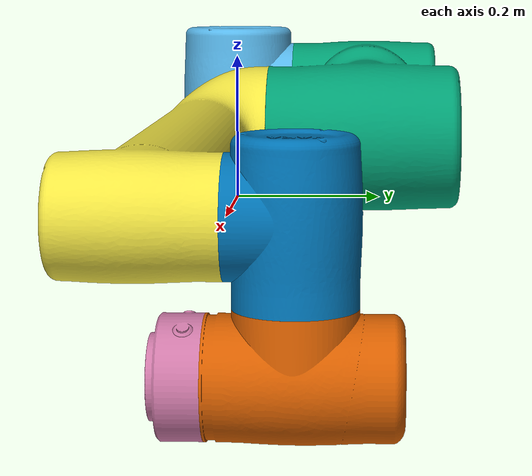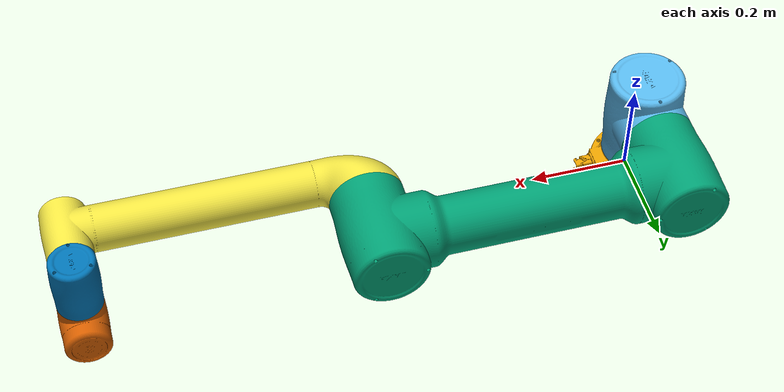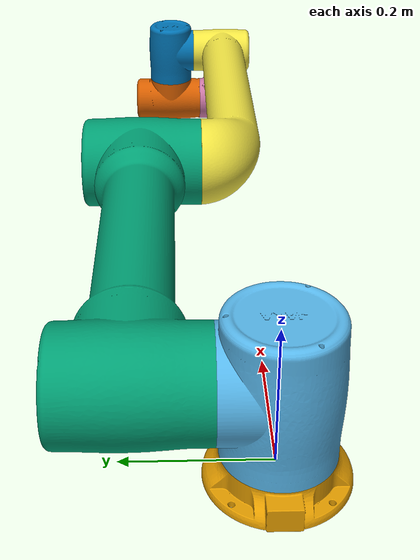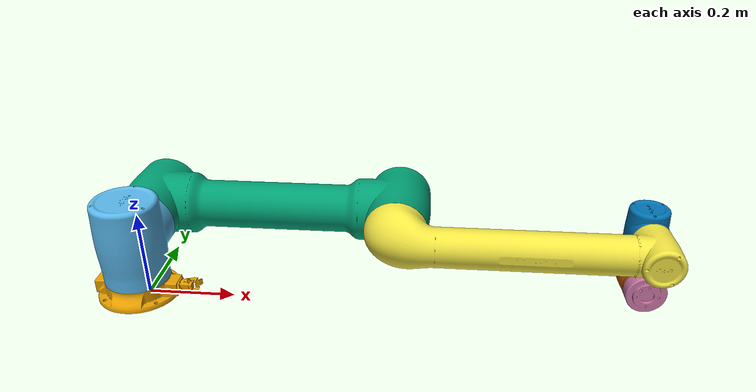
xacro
<?xml version="1.0" encoding="UTF-8"?>
<robot xmlns:xacro="http://www.ros.org/wiki/xacro" name="jaka_Zu12">
  <link name="base_link">
    <inertial>
      <mass value="1.3622333"/>
      <origin xyz="-0.02251092 0.00003924 0.02001856" rpy="0 0 0"/>
      <inertia ixx="0.00244265" ixy="-0.00000239" ixz="0.00000649" iyy="0.00318563" iyz="5.4e-7" izz="0.00530426"/>
    </inertial>
    <visual>
      <origin xyz="0 0 0" rpy="0 0 0"/>
      <geometry>
        <mesh filename="package://aubo_description/meshes/jaka_Zu12/base_link.stl"/>
      </geometry>
    </visual>
    <collision>
      <origin xyz="0 0 0" rpy="0 0 0"/>
      <geometry>
        <mesh filename="package://aubo_description/meshes/jaka_Zu12/base_link.stl"/>
      </geometry>
    </collision>
  </link>
  <link name="shoulder_Link">
    <inertial>
      <mass value="6.40335184"/>
      <origin xyz="-0.00398183 -5.9e-7 0.08437617" rpy="0 0 0"/>
      <inertia ixx="0.02903434" ixy="2.7e-7" ixz="0.00005977" iyy="0.02973271" iyz="-1.3e-7" izz="0.01996389"/>
    </inertial>
    <visual>
      <origin xyz="0 0 0" rpy="0 0 0"/>
      <geometry>
        <mesh filename="package://aubo_description/meshes/jaka_Zu12/Link_1.stl"/>
      </geometry>
    </visual>
    <collision>
      <origin xyz="0 0 0" rpy="0 0 0"/>
      <geometry>
        <mesh filename="package://aubo_description/meshes/jaka_Zu12/Link_1.stl"/>
      </geometry>
    </collision>
  </link>
  <link name="upperArm_Link">
    <inertial>
      <mass value="21.08242964"/>
      <origin xyz="0.29750016 -2e-8 -0.07397045" rpy="0 0 0"/>
      <inertia ixx="0.07343223" ixy="-0.00000274" ixz="-2e-8" iyy="1.32051487" iyz="-1e-8" izz="1.30093395"/>
    </inertial>
    <visual>
      <origin xyz="0 0 0" rpy="0 0 0"/>
      <geometry>
        <mesh filename="package://aubo_description/meshes/jaka_Zu12/Link_2.stl"/>
      </geometry>
    </visual>
    <collision>
      <origin xyz="0 0 0" rpy="0 0 0"/>
      <geometry>
        <mesh filename="package://aubo_description/meshes/jaka_Zu12/Link_2.stl"/>
      </geometry>
    </collision>
  </link>
  <link name="foreArm_Link">
    <inertial>
      <mass value="8.57316957"/>
      <origin xyz="0.00000143 0.27265689 0.05637991" rpy="0 0 0"/>
      <inertia ixx="0.37321758" ixy="0.0000025" ixz="1.4e-7" iyy="0.01219586" iyz="-0.01143538" izz="0.37257386"/>
    </inertial>
    <visual>
      <origin xyz="0 0 0" rpy="0 0 0"/>
      <geometry>
        <mesh filename="package://aubo_description/meshes/jaka_Zu12/Link_3.stl"/>
      </geometry>
    </visual>
    <collision>
      <origin xyz="0 0 0" rpy="0 0 0"/>
      <geometry>
        <mesh filename="package://aubo_description/meshes/jaka_Zu12/Link_3.stl"/>
      </geometry>
    </collision>
  </link>
  <link name="wrist1_Link">
    <inertial>
      <mass value="1.49619108"/>
      <origin xyz="-0.00339141 3.6e-7 0.04722957" rpy="0 0 0"/>
      <inertia ixx="0.0017809" ixy="1e-8" ixz="0.00001532" iyy="0.00264631" iyz="-1e-8" izz="0.00254652"/>
    </inertial>
    <visual>
      <origin xyz="0 0 0" rpy="0 0 0"/>
      <geometry>
        <mesh filename="package://aubo_description/meshes/jaka_Zu12/Link_4.stl"/>
      </geometry>
    </visual>
    <collision>
      <origin xyz="0 0 0" rpy="0 0 0"/>
      <geometry>
        <mesh filename="package://aubo_description/meshes/jaka_Zu12/Link_4.stl"/>
      </geometry>
    </collision>
  </link>
  <link name="wrist2_Link">
    <inertial>
      <mass value="1.70178613"/>
      <origin xyz="0.00534852 2.1e-7 0.04762457" rpy="0 0 0"/>
      <inertia ixx="0.00198515" ixy="2e-8" ixz="-0.00002749" iyy="0.00363181" iyz="0" izz="0.00353004"/>
    </inertial>
    <visual>
      <origin xyz="0 0 0" rpy="0 0 0"/>
      <geometry>
        <mesh filename="package://aubo_description/meshes/jaka_Zu12/Link_5.stl"/>
      </geometry>
    </visual>
    <collision>
      <origin xyz="0 0 0" rpy="0 0 0"/>
      <geometry>
        <mesh filename="package://aubo_description/meshes/jaka_Zu12/Link_5.stl"/>
      </geometry>
    </collision>
  </link>
  <link name="wrist3_Link">
    <inertial>
      <mass value="0.38083844"/>
      <origin xyz="0.00002142 0.00011793 0.01944363" rpy="0 0 0"/>
      <inertia ixx="0.0002314" ixy="-1.4e-7" ixz="-1.4e-7" iyy="0.00023168" iyz="4e-7" izz="0.00038316"/>
    </inertial>
    <visual>
      <origin xyz="0 0 0" rpy="0 0 0"/>
      <geometry>
        <mesh filename="package://aubo_description/meshes/jaka_Zu12/Link_6.stl"/>
      </geometry>
    </visual>
    <collision>
      <origin xyz="0 0 0" rpy="0 0 0"/>
      <geometry>
        <mesh filename="package://aubo_description/meshes/jaka_Zu12/Link_6.stl"/>
      </geometry>
    </collision>
  </link>
  <joint name="shoulder_joint" type="revolute">
    <parent link="base_link"/>
    <child link="shoulder_Link"/>
    <origin xyz="-0.0238 0 0.05495" rpy="0 0 -1.57079633"/>
    <axis xyz="0 0 1"/>
    <limit lower="-3.141592653589793" upper="3.141592653589793" effort="500" velocity="1"/>
  </joint>
  <joint name="upperArm_joint" type="revolute">
    <parent link="shoulder_Link"/>
    <child link="upperArm_Link"/>
    <origin xyz="-0.10565 0 0.0877" rpy="1.57079633 0 1.57079633"/>
    <axis xyz="0 0 1"/>
    <limit lower="-3.141592653589793" upper="3.141592653589793" effort="500" velocity="1"/>
  </joint>
  <joint name="foreArm_joint" type="revolute">
    <parent link="upperArm_Link"/>
    <child link="foreArm_Link"/>
    <origin xyz="0.595 0 0.02665" rpy="0 0 -1.57079633"/>
    <axis xyz="0 0 1"/>
    <limit lower="-3.141592653589793" upper="3.141592653589793" effort="500" velocity="1"/>
  </joint>
  <joint name="wrist1_joint" type="revolute">
    <parent link="foreArm_Link"/>
    <child link="wrist1_Link"/>
    <origin xyz="0 0.5715 -0.002" rpy="-3.14159265 0 3.14159265"/>
    <axis xyz="0 0 1"/>
    <limit lower="-3.141592653589793" upper="3.141592653589793" effort="500" velocity="1"/>
  </joint>
  <joint name="wrist2_joint" type="revolute">
    <parent link="wrist1_Link"/>
    <child link="wrist2_Link"/>
    <origin xyz="-0.06449999 0 0.0505" rpy="0 -1.57079633 0"/>
    <axis xyz="0 0 1"/>
    <limit lower="-3.141592653589793" upper="3.141592653589793" effort="500" velocity="1"/>
  </joint>
  <joint name="wrist3_joint" type="revolute">
    <parent link="wrist2_Link"/>
    <child link="wrist3_Link"/>
    <origin xyz="-0.0625 0 0.0505" rpy="-1.57079633 0 1.57079633"/>
    <axis xyz="0 0 1"/>
    <limit lower="-3.141592653589793" upper="3.141592653589793" effort="500" velocity="1"/>
  </joint>
</robot>
